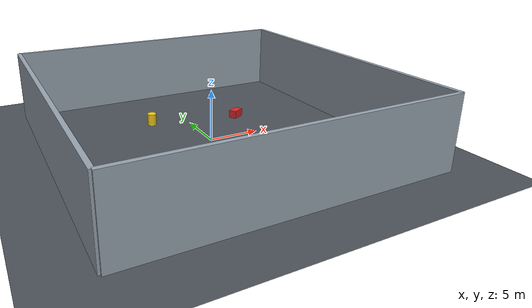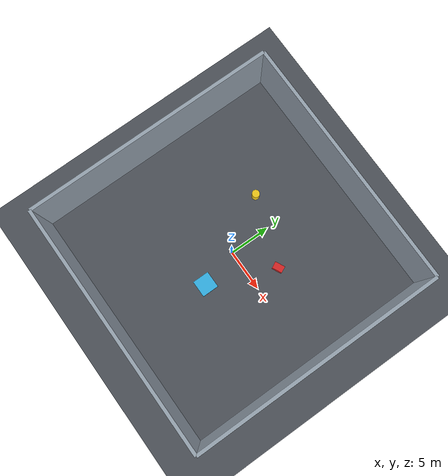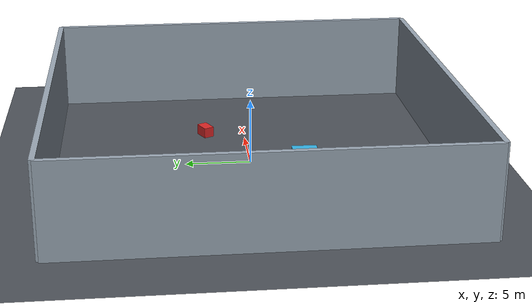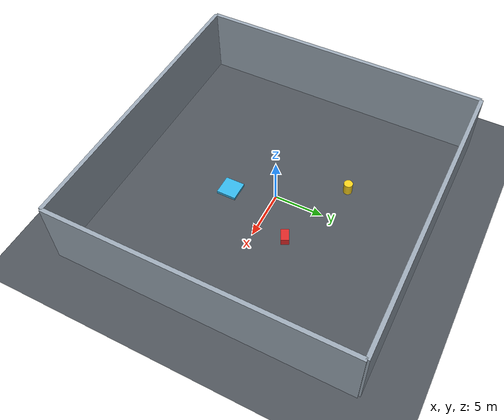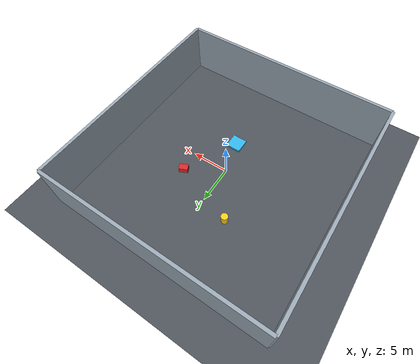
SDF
<?xml version="1.0" ?>
<!--
  warehouse_inspection.sdf
  ========================
  Gazebo Harmonic (Gz-Sim 8) Simulation World for GPS-Denied Autonomous UAV Inspection.
  Author: Member 2 (Simulation & Flight Stack Engineer)
-->
<sdf version="1.8">
  <world name="warehouse_inspection_world">

    <!-- Physics Engine Configuration (1000Hz Deterministic Step) -->
    <physics name="1ms_physics" type="dart">
      <max_step_size>0.001</max_step_size>
      <real_time_factor>1.0</real_time_factor>
      <real_time_update_rate>1000.0</real_time_update_rate>
    </physics>

    <!-- Gazebo Systems / Plugins -->
    <plugin filename="gz-sim-physics-system" name="gz::sim::systems::Physics"/>
    <plugin filename="gz-sim-sensors-system" name="gz::sim::systems::Sensors">
      <render_engine>ogre2</render_engine>
    </plugin>
    <plugin filename="gz-sim-user-commands-system" name="gz::sim::systems::UserCommands"/>
    <plugin filename="gz-sim-scene-broadcaster-system" name="gz::sim::systems::SceneBroadcaster"/>
    <plugin filename="gz-sim-imu-system" name="gz::sim::systems::Imu"/>

    <!-- Lighting -->
    <light type="directional" name="overhead_sun">
      <cast_shadows>true</cast_shadows>
      <pose>0 0 15 0 0 0</pose>
      <diffuse>0.85 0.85 0.88 1</diffuse>
      <specular>0.2 0.2 0.2 1</specular>
      <attenuation>
        <range>1000</range>
        <constant>0.9</constant>
        <linear>0.01</linear>
        <quadratic>0.001</quadratic>
      </attenuation>
      <direction>-0.3 0.2 -0.9</direction>
    </light>

    <!-- Ground Plane -->
    <model name="ground_plane">
      <static>true</static>
      <link name="link">
        <collision name="collision">
          <geometry>
            <plane>
              <normal>0 0 1</normal>
              <size>60 60</size>
            </plane>
          </geometry>
          <surface>
            <friction>
              <ode>
                <mu>100</mu>
                <mu2>50</mu2>
              </ode>
            </friction>
          </surface>
        </collision>
        <visual name="visual">
          <geometry>
            <plane>
              <normal>0 0 1</normal>
              <size>60 60</size>
            </plane>
          </geometry>
          <material>
            <ambient>0.2 0.22 0.25 1</ambient>
            <diffuse>0.3 0.32 0.35 1</diffuse>
            <specular>0.1 0.1 0.1 1</specular>
          </material>
        </visual>
      </link>
    </model>

    <!-- Warehouse Enclosure Walls (GPS-Denied Indoor Structure) -->
    <model name="warehouse_walls">
      <static>true</static>
      <link name="walls_link">
        <!-- North Wall -->
        <collision name="north_col">
          <pose>0 15 3.5 0 0 0</pose>
          <geometry><box><size>30 0.4 7.0</size></box></geometry>
        </collision>
        <visual name="north_vis">
          <pose>0 15 3.5 0 0 0</pose>
          <geometry><box><size>30 0.4 7.0</size></box></geometry>
          <material><ambient>0.6 0.65 0.7 1</ambient><diffuse>0.6 0.65 0.7 1</diffuse></material>
        </visual>

        <!-- South Wall -->
        <collision name="south_col">
          <pose>0 -15 3.5 0 0 0</pose>
          <geometry><box><size>30 0.4 7.0</size></box></geometry>
        </collision>
        <visual name="south_vis">
          <pose>0 -15 3.5 0 0 0</pose>
          <geometry><box><size>30 0.4 7.0</size></box></geometry>
          <material><ambient>0.6 0.65 0.7 1</ambient><diffuse>0.6 0.65 0.7 1</diffuse></material>
        </visual>

        <!-- East Wall -->
        <collision name="east_col">
          <pose>15 0 3.5 0 0 0</pose>
          <geometry><box><size>0.4 30 7.0</size></box></geometry>
        </collision>
        <visual name="east_vis">
          <pose>15 0 3.5 0 0 0</pose>
          <geometry><box><size>0.4 30 7.0</size></box></geometry>
          <material><ambient>0.6 0.65 0.7 1</ambient><diffuse>0.6 0.65 0.7 1</diffuse></material>
        </visual>

        <!-- West Wall -->
        <collision name="west_col">
          <pose>-15 0 3.5 0 0 0</pose>
          <geometry><box><size>0.4 30 7.0</size></box></geometry>
        </collision>
        <visual name="west_vis">
          <pose>-15 0 3.5 0 0 0</pose>
          <geometry><box><size>0.4 30 7.0</size></box></geometry>
          <material><ambient>0.6 0.65 0.7 1</ambient><diffuse>0.6 0.65 0.7 1</diffuse></material>
        </visual>
      </link>
    </model>

    <!-- Inspection Target 1: Red Medical Supply Crate (Member 1 VLM Target) -->
    <model name="medical_supply_crate">
      <static>true</static>
      <pose>4.5 3.2 1.0 0 0 0.45</pose>
      <link name="crate_link">
        <collision name="crate_col">
          <geometry><box><size>1.2 0.8 0.8</size></box></geometry>
        </collision>
        <visual name="crate_vis">
          <geometry><box><size>1.2 0.8 0.8</size></box></geometry>
          <material>
            <ambient>0.85 0.15 0.15 1</ambient>
            <diffuse>0.85 0.15 0.15 1</diffuse>
          </material>
        </visual>
      </link>
    </model>

    <!-- Inspection Target 2: Yellow Hazmat Chemical Drum (Member 5 Memory Target) -->
    <model name="hazmat_container">
      <static>true</static>
      <pose>-3.8 6.1 0.75 0 0 0</pose>
      <link name="drum_link">
        <collision name="drum_col">
          <geometry><cylinder><radius>0.45</radius><length>1.2</length></cylinder></geometry>
        </collision>
        <visual name="drum_vis">
          <geometry><cylinder><radius>0.45</radius><length>1.2</length></cylinder></geometry>
          <material>
            <ambient>0.95 0.8 0.1 1</ambient>
            <diffuse>0.95 0.8 0.1 1</diffuse>
          </material>
        </visual>
      </link>
    </model>

    <!-- Inspection Target 3: Elevated Survivor Landing Pad Alpha -->
    <model name="landing_pad_alpha">
      <static>true</static>
      <pose>1.2 -4.5 0.15 0 0 0</pose>
      <link name="pad_link">
        <collision name="pad_col">
          <geometry><box><size>2.0 2.0 0.3</size></box></geometry>
        </collision>
        <visual name="pad_vis">
          <geometry><box><size>2.0 2.0 0.3</size></box></geometry>
          <material>
            <ambient>0.2 0.7 0.9 1</ambient>
            <diffuse>0.2 0.7 0.9 1</diffuse>
          </material>
        </visual>
      </link>
    </model>

  </world>
</sdf>
